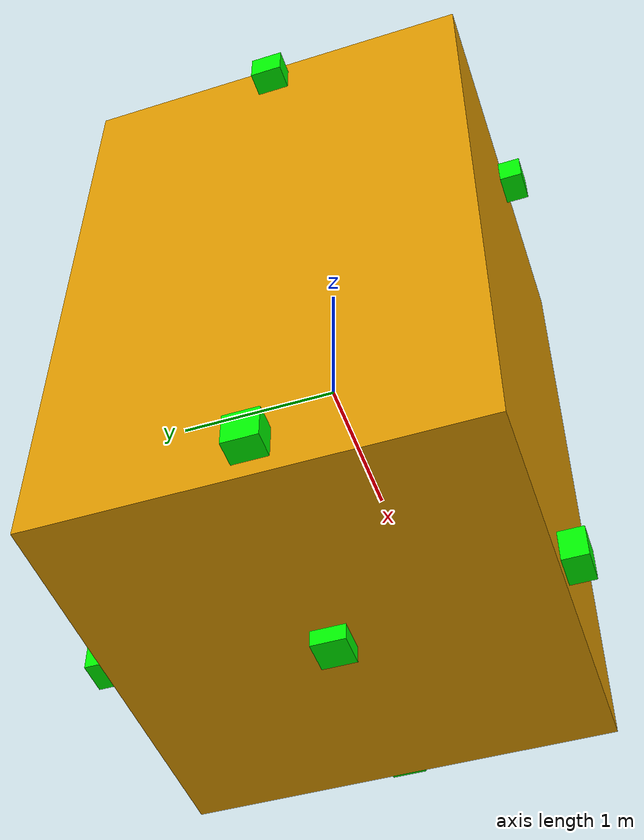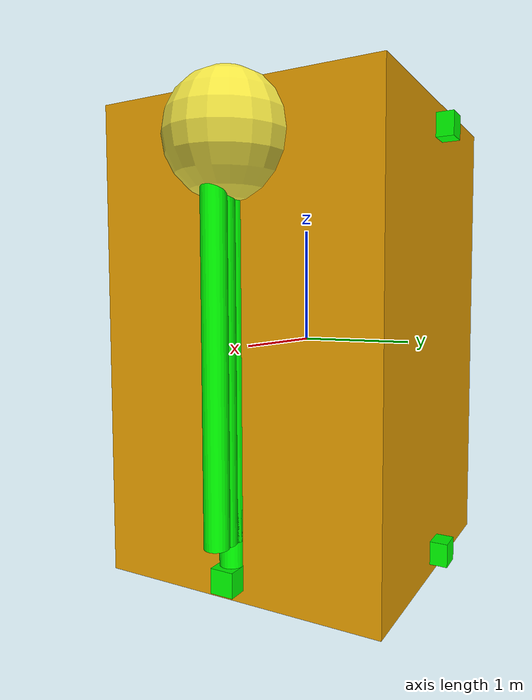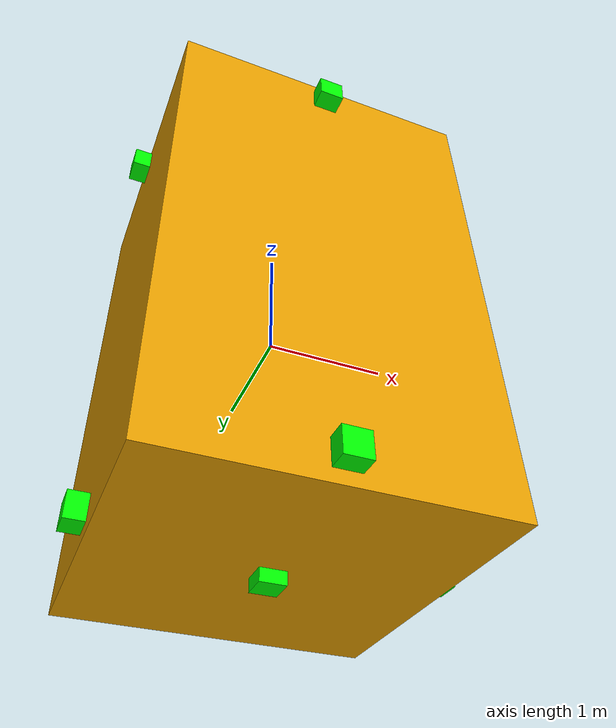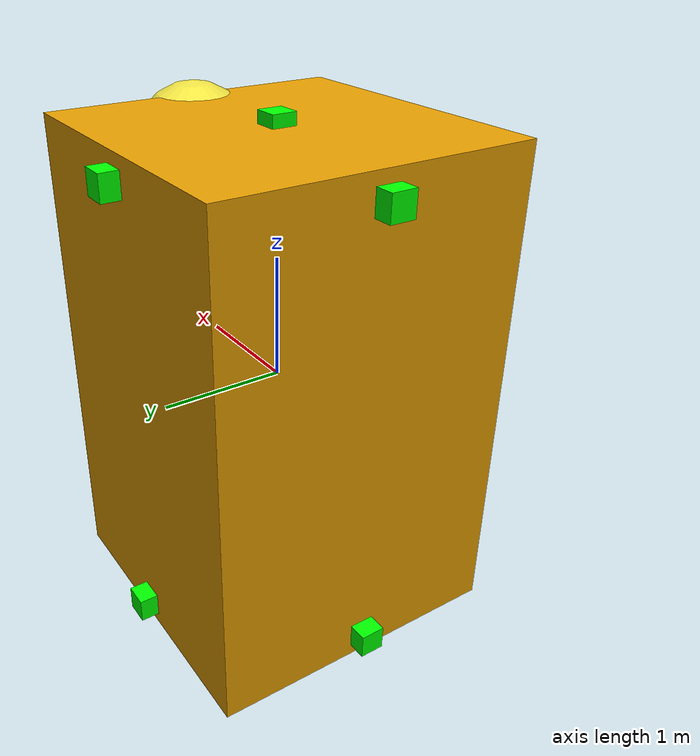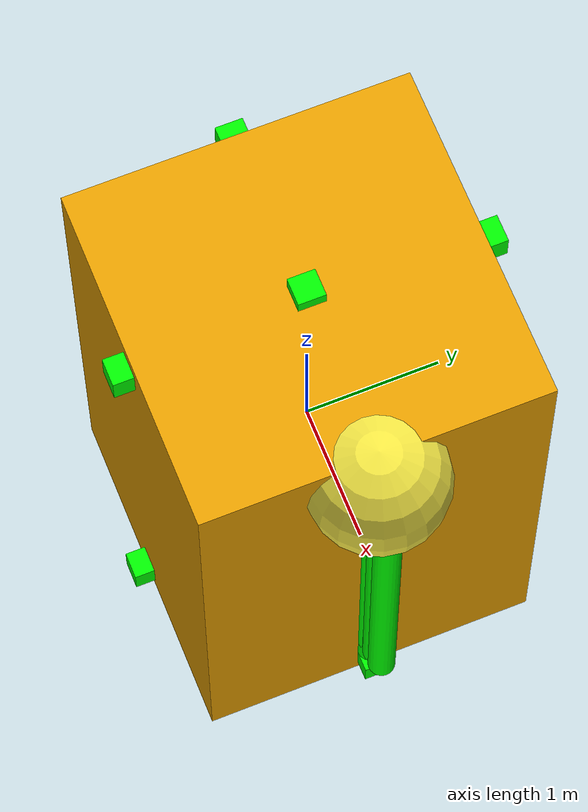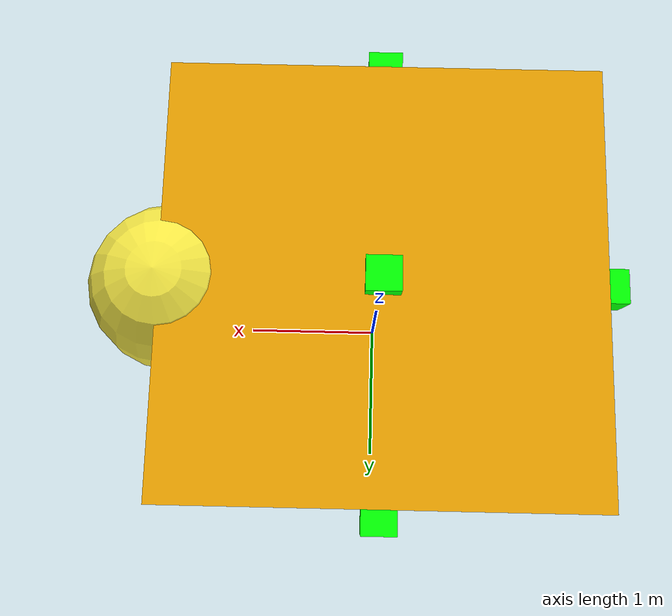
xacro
<?xml version="1.0" encoding="utf-8"?>
<robot name="satellite"
    xmlns:xacro="http://www.ros.org/wiki/xacro">
    <material name="blue">
        <color rgba="0 0 0.8 1"/>
    </material>

    <material name="yellow">
        <color rgba="1 1 0 1"/>
    </material>

    <material name="black">
        <color rgba="0 0 0 1"/>
    </material>

    <material name="green">
        <color rgba="0 1 0 1"/>
    </material>

    <material name="white">
        <color rgba="1 1 1 1"/>
    </material>

    <xacro:property name="base_mass" value="11900" />
    <xacro:property name="heavy_object_mass" value="100" />
    <xacro:property name="base_w" value="4" />
    <xacro:property name="base_l" value="4" />
    <xacro:property name="base_h" value="11" />
    <xacro:property name="arm_segment_length" value="3" />
    <xacro:property name="arm_segment_mass" value="136" />
    <xacro:property name="show_outline" value="1" />

    <!-- links -->
    <link name="base_link">
        <inertial>
            <mass value="${base_mass}"/>
            <origin xyz="0 0 0"/>
            <inertia ixx="${base_mass * 2.5 * 2.5 * 2/5}" ixy="0.0" ixz="0.0" iyy="${base_mass * 2.5 * 2.5 * 2/5}" iyz="0.0" izz="${base_mass * 4 * 4 * 2/5}" />
        </inertial>

        <xacro:if value="${show_outline == 1}">
            <visual>
                <geometry>
                    <box size="2.5 2.5 4"/>
                </geometry>
            </visual>
        </xacro:if>

    </link>

    <!-- antenna and communication arrays -->
    <link name="front">

        <inertial>
            <mass value="1e-12"/>
            <origin xyz="0 0 0"/>
            <inertia ixx="1e-12" ixy="0.0" ixz="0.0" iyy="1e-12" iyz="0.0" izz="1e-12"/>
        </inertial>
    </link>

    <link name="top_array">

        <inertial>
            <mass value="1e-12"/>
            <origin xyz="0 0 0"/>
            <inertia ixx="1e-12" ixy="0.0" ixz="0.0" iyy="1e-12" iyz="0.0" izz="1e-12"/>
        </inertial>
    </link>

    <link name="bot_array">

        <inertial>
            <mass value="1e-12"/>
            <origin xyz="0 0 0"/>
            <inertia ixx="1e-12" ixy="0.0" ixz="0.0" iyy="1e-12" iyz="0.0" izz="1e-12"/>
        </inertial>
    </link>

    <!-- thrusters -->
    <xacro:macro name="thruster" params="name origin">
        <link name="thruster_${name}">
            <visual>
                <geometry>
                    <box size="0.2 0.2 0.2"/>
                </geometry>

                <origin rpy="0 0 0" xyz="0 0 0"/>
                <material name="green"/>
            </visual>

            <inertial>
                <mass value="0.001"/>
                <inertia ixx="1e-3" ixy="0.0" ixz="0.0" iyy="1e-3" iyz="0.0" izz="1e-3"/>
            </inertial>
        </link>

        <!-- Prismatic joints with no effort so pinocchio recognizes
            them as controllable joints.
         -->
        <joint name="base_to_thruster_${name}" type="fixed">

            <parent link="base_link"/>
            <child link="thruster_${name}"/>
            <origin xyz="${origin}"/>
        </joint>
    </xacro:macro>

    <xacro:thruster name="bot" origin="0 0 -2"/>
    <xacro:thruster name="bot_1" origin="0 -1.3 -1.8"/>
    <xacro:thruster name="bot_2" origin="-1.3 0 -1.8"/>
    <xacro:thruster name="bot_3" origin="0 1.3 -1.8"/>
    <xacro:thruster name="bot_4" origin="1.3 0 -1.8"/>

    <xacro:thruster name="top" origin="0 0 2"/>
    <xacro:thruster name="top_1" origin="0 -1.3 1.8"/>
    <xacro:thruster name="top_2" origin="-1.3 0 1.8"/>
    <xacro:thruster name="top_3" origin="0 1.3 1.8"/>
    <xacro:thruster name="top_4" origin="1.3 0 1.8"/>

    <!-- joints -->
    <joint name="base_to_front" type="fixed">
        <parent link="base_link"/>
        <child link="front"/>
        <origin xyz="0 0 2"/>
    </joint>

    <joint name="base_to_top_array" type="fixed">
        <parent link="base_link"/>
        <child link="top_array"/>
        <origin xyz="0 1 -1"/>
    </joint>

    <joint name="base_to_bot_array" type="fixed">
        <parent link="base_link"/>
        <child link="bot_array"/>
        <origin xyz="0 -1 -1"/>
    </joint>

    <!-- arm -->
    <link name="arm_base">
        <visual>
            <geometry>
                <cylinder length="0.5" radius="0.1"/>
            </geometry>

            <origin rpy="0 0 0" xyz="0 0 0"/>
            <material name="green"/>
        </visual>

        <inertial>
            <mass value="1e-3"/>
            <origin xyz="0 0 0"/>
            <inertia ixx="1e-3" ixy="0.0" ixz="0.0" iyy="1e-3" iyz="0.0" izz="1e-3"/>
        </inertial>
    </link>

    <link name="arm_shoulder">
        <visual>
            <geometry>
                <cylinder length="${arm_segment_length}" radius="0.1"/>
            </geometry>

            <origin rpy="0 0 0" xyz="0 0 ${arm_segment_length/2}"/>
            <material name="green"/>
        </visual>

        <inertial>
            <mass value="${arm_segment_mass}"/>
            <origin rpy="0 0 0" xyz="0 0 1"/>
            <inertia ixx="${1/3 * arm_segment_mass * arm_segment_length * arm_segment_length}" ixy="0.0" ixz="0.0" iyy="1e-3" iyz="0.0" izz="${1/3 * arm_segment_mass * arm_segment_length * arm_segment_length}" />
        </inertial>
    </link>

    <link name="arm_elbow">
        <visual>
            <geometry>
                <cylinder length="${arm_segment_length}" radius="0.1"/>
            </geometry>

            <origin rpy="0 0 0" xyz="0.1 0 -${arm_segment_length/2}"/>
            <material name="green"/>
        </visual>

        <inertial>
            <mass value="${arm_segment_mass}"/>
            <origin rpy="0 0 0" xyz="0 0 1"/>
            <inertia ixx="${1/3 * arm_segment_mass * arm_segment_length * arm_segment_length}" ixy="0.0" ixz="0.0" iyy="1e-3" iyz="0.0" izz="${1/3 * arm_segment_mass * arm_segment_length * arm_segment_length}" />
        </inertial>
    </link>

    <link name="arm_wrist">
        <visual>
            <geometry>
                <cylinder length="${arm_segment_length}" radius="0.1"/>
            </geometry>

            <origin rpy="0 0 0" xyz="0.2 0 ${arm_segment_length/2}"/>
            <material name="green"/>
        </visual>

        <inertial>
            <mass value="${arm_segment_mass}"/>
            <origin rpy="0 0 0" xyz="0 0 1"/>
            <inertia ixx="${1/3 * arm_segment_mass * arm_segment_length * arm_segment_length}" ixy="0.0" ixz="0.0" iyy="1e-3" iyz="0.0" izz="${1/3 * arm_segment_mass * arm_segment_length * arm_segment_length}" />
        </inertial>
    </link>

    <link name="arm_end_eff">
        <visual>
            <geometry>
                <cylinder length="0.2" radius="0.1"/>
            </geometry>

            <origin rpy="0 0 0" xyz="0.2 0 0"/>
            <material name="yellow"/>
        </visual>

        <inertial>
            <mass value="1e-5"/>
            <origin rpy="0 0 0" xyz="0 0 1"/>
            <inertia ixx="1e-3" ixy="0.0" ixz="0.0" iyy="1e-3" iyz="0.0" izz="1e-3" />
        </inertial>
    </link>

    <link name="heavy_object">
        <visual>
            <geometry>
                <sphere radius="0.5"></sphere>
            </geometry>
        </visual>

        <inertial>
            <mass value="${heavy_object_mass}"></mass>
            <origin rpy="0 0 0" xyz="0 0 1"/>
            <inertia ixx="${heavy_object_mass * 0.5 * 0.5 * 2/5}" ixy="0.0" ixz="0.0" iyy="${heavy_object_mass * 0.5 * 0.5 * 2/5}" iyz="0.0" izz="${heavy_object_mass * 0.5 * 0.5 * 2/5}" />
        </inertial>
    </link>

    <joint name="base_to_arm" type="revolute">
        <parent link="base_link"/>
        <child link="arm_base"/>

        <limit effort="1.0" lower="-1.57" upper="1.57" velocity="0.5"/>
        <axis xyz="1 0 0"/>
        <origin xyz="1.25 0 -${arm_segment_length/2}"/>
    </joint>

    <joint name="arm_base_to_shoulder" type="revolute">
        <parent link="arm_base"/>
        <child link="arm_shoulder"/>

        <limit effort="1.0" lower="0" upper="3.14" velocity="0.5"/>
        <axis xyz="0 1 0"/>
        <origin xyz="0 0 0"/>
    </joint>

    <joint name="arm_shoulder_to_elbow" type="revolute">
        <parent link="arm_shoulder"/>
        <child link="arm_elbow"/>

        <limit effort="1.0" lower="0" upper="3.14" velocity="0.5"/>
        <axis xyz="0 -1 0"/>
        <origin xyz="0 0 ${arm_segment_length}"/>
    </joint>

    <joint name="arm_elbow_to_wrist" type="revolute">
        <parent link="arm_elbow"/>
        <child link="arm_wrist"/>

        <limit effort="1.0" lower="-300" upper="300" velocity="0.5"/>
        <axis xyz="-1 0 0"/>
        <origin xyz="0 0 -${arm_segment_length}"/>
    </joint>

    <joint name="arm_wrist_to_end_eff" type="fixed">
        <parent link="arm_wrist"/>
        <child link="arm_end_eff"/>

        <origin xyz="0 0 ${arm_segment_length + 0.1}"/>
    </joint>

    <joint name="wrist_to_heavy_object" type="fixed">
        <parent link="arm_end_eff"/>
        <child link="heavy_object"/>

        <origin xyz="0 0 0"/>
    </joint>
</robot>
